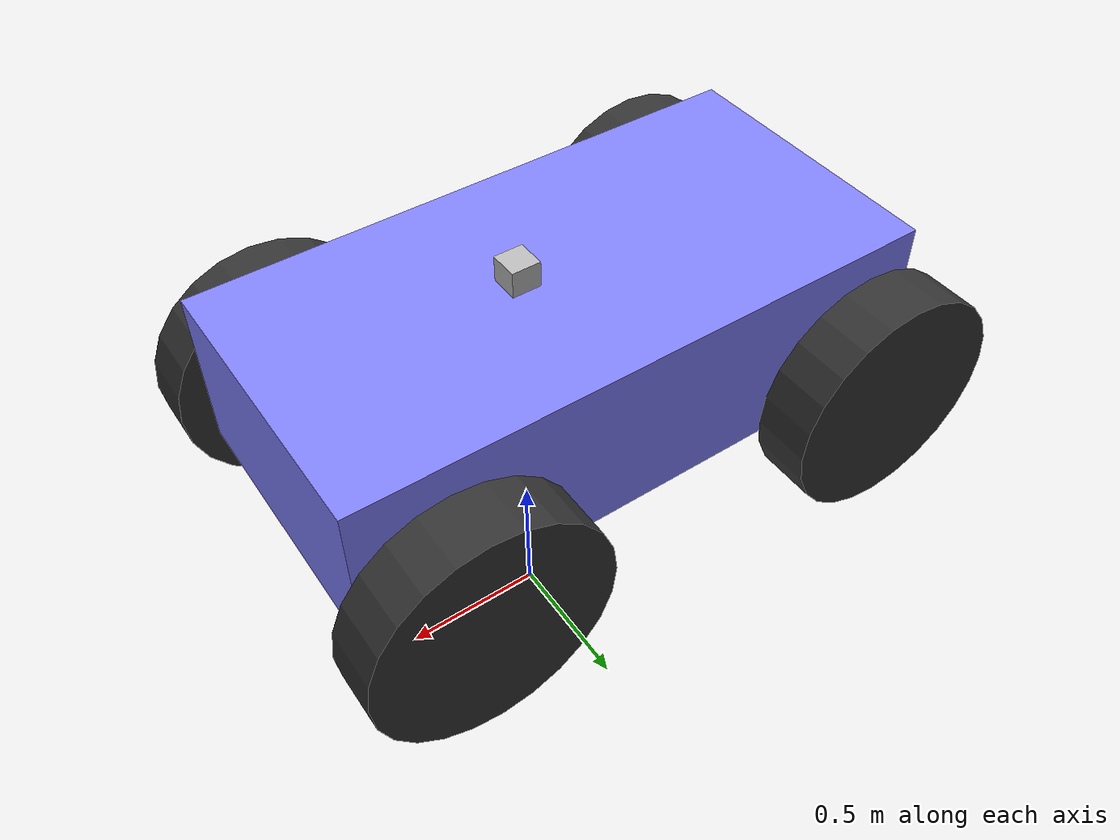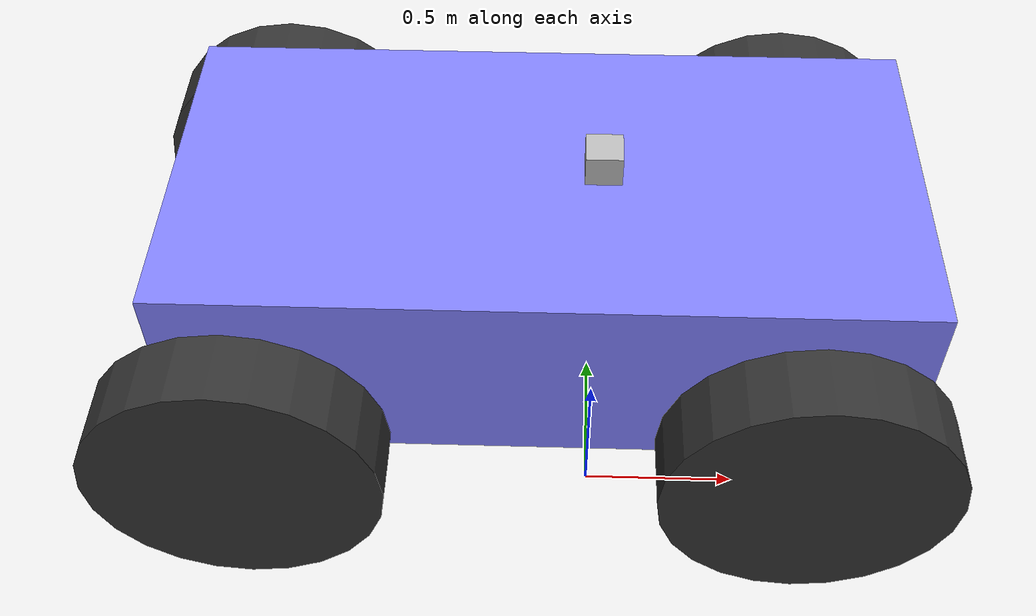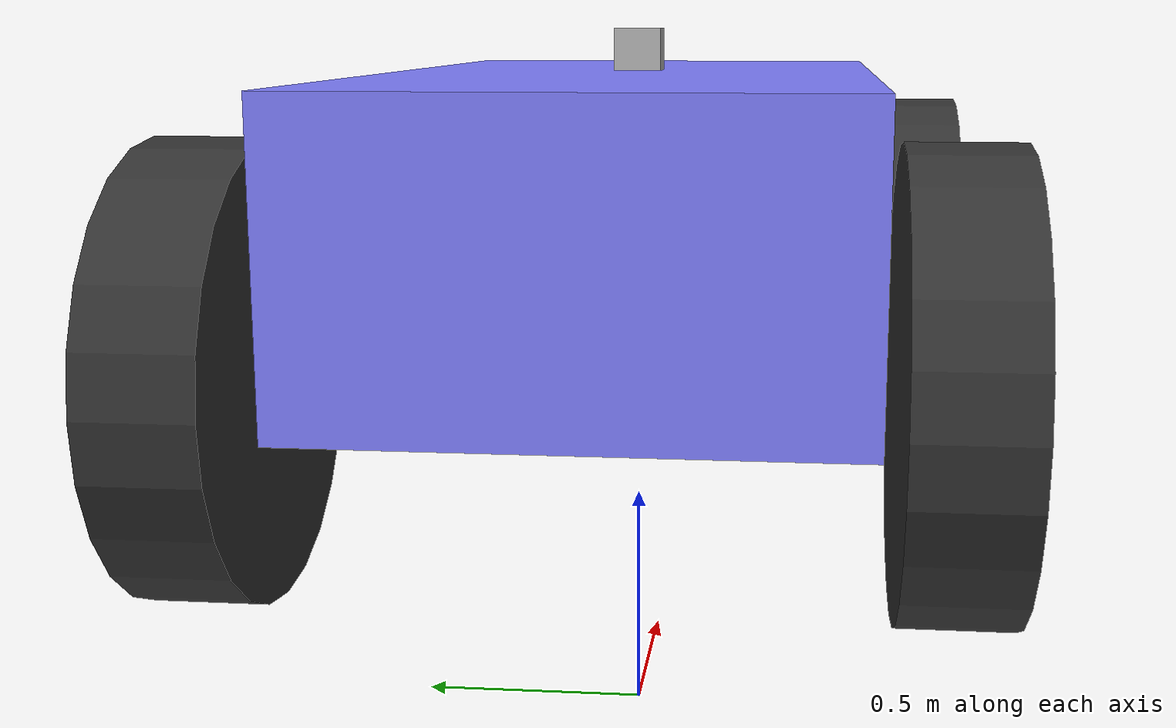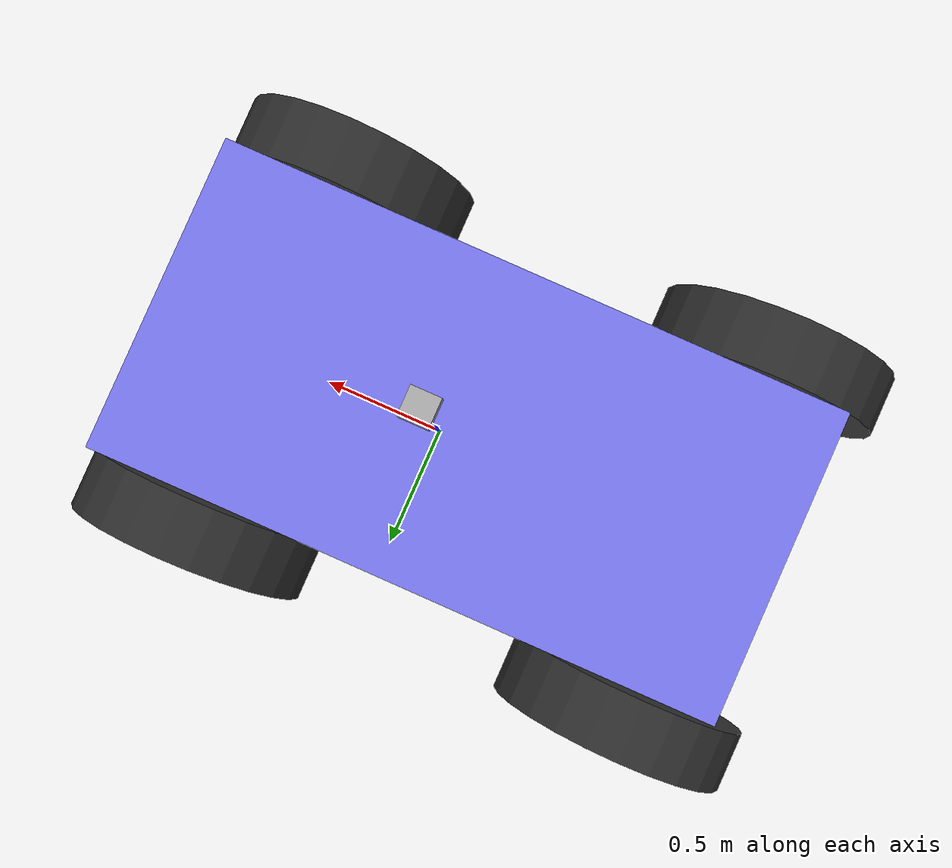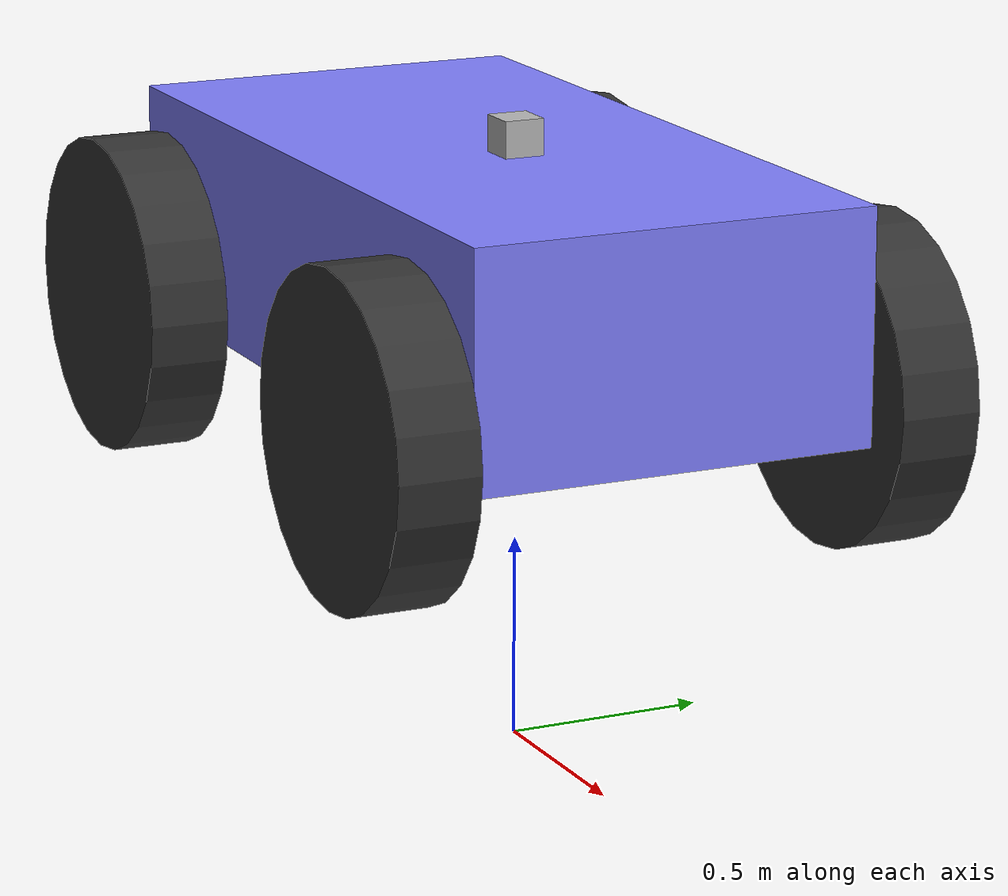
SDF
<?xml version="1.0"?>
<sdf version="1.6">

  <plugin name='gz::sim::systems::UserCommands' filename='gz-sim-user-commands-system' />
  <plugin filename="gz-sim-imu-system"
    name="gz::sim::systems::Imu">
  </plugin>
  <model name='Car' canonical_link='chassis'>
    <pose>0 0 1 0 0 0</pose>
    <link name='chassis'>
      <pose>-0.15142700000000001 0 0.17499999999999999 0 0 0</pose>
      <inertial>
        <mass>1.14395</mass>
        <inertia>
          <ixx>0.126164</ixx>
          <ixy>0</ixy>
          <ixz>0</ixz>
          <iyy>0.41651899999999997</iyy>
          <iyz>0</iyz>
          <izz>0.481014</izz>
        </inertia>
        <pose>0 0 0 0 0 0</pose>
      </inertial>
      <visual name='visual'>
        <geometry>
          <box>
            <size>2.0114200000000002 1 0.56872599999999995</size>
          </box>
        </geometry>
        <material>
          <ambient>0.5 0.5 1 1</ambient>
          <diffuse>0.5 0.5 1 1</diffuse>
          <specular>0 0 1 1</specular>
        </material>
      </visual>
      <collision name='collision'>
        <geometry>
          <box>
            <size>2.0114200000000002 1 0.56872599999999995</size>
          </box>
        </geometry>
        <surface>
          <friction>
            <ode />
          </friction>
          <bounce />
          <contact />
        </surface>
      </collision>
      <sensor name="imu_sensor" type="imu">
        <always_on>1</always_on>
        <update_rate>1</update_rate>
        <visualize>true</visualize>
        <topic>imu</topic>
      </sensor>
    </link>

    <link name="lidar_link">
      <pose>0 0 0.5 0 0 0</pose>
      <inertial>
        <mass>0.1</mass>
        <inertia>
          <ixx>0.000166667</ixx>
          <iyy>0.000166667</iyy>
          <izz>0.000166667</izz>
        </inertia>
      </inertial>
      <collision name="collision">
        <geometry>
          <box>
            <size>0.1 0.1 0.1</size>
          </box>
        </geometry>
      </collision>
      <visual name="visual">
        <geometry>
          <box>
            <size>0.1 0.1 0.1</size>
          </box>
        </geometry>
      </visual>

      <sensor name='gpu_lidar' type='gpu_lidar'>
        <pose>0 0 0.5 0 0 0</pose>
        <topic>lidar</topic>
        <update_rate>100</update_rate>
        <ray>
          <scan>
            <horizontal>
              <samples>360</samples>
              <min_angle>0</min_angle>
              <max_angle>6.14</max_angle>
            </horizontal>
          </scan>
          <range>
            <min>0.3</min>
            <max>12</max>
            <resolution>1</resolution>
          </range>
        </ray>
        <always_on>1</always_on>
        <visualize>true</visualize>
      </sensor>
    </link>

    <link name='front_left_wheel'>
      <pose>0.55428299999999997 0.62502900000000006 -0.025000000000000022 -1.5706999999999995 0 0</pose>
      <inertial>
        <mass>2</mass>
        <inertia>
          <ixx>0.14583299999999999</ixx>
          <ixy>0</ixy>
          <ixz>0</ixz>
          <iyy>0.14583299999999999</iyy>
          <iyz>0</iyz>
          <izz>0.125</izz>
        </inertia>
        <pose>0 0 0 0 0 0</pose>
      </inertial>
      <visual name='visual'>
        <geometry>
          <cylinder>
            <length>0.2</length>
            <radius>0.4</radius>
          </cylinder>
        </geometry>
        <material>
          <ambient>0.200000003 0.200000003 0.200000003 1</ambient>
          <diffuse>0.200000003 0.200000003 0.200000003 1</diffuse>
          <specular>0.200000003 0.200000003 0.200000003 1</specular>
        </material>
      </visual>
      <collision name='collision'>
        <geometry>
          <cylinder>
            <length>0.2</length>
            <radius>0.4</radius>
          </cylinder>
        </geometry>
        <surface>
          <friction>
            <ode>
              <mu>0.5</mu>
              <mu2>1</mu2>
              <fdir1>0 0 1</fdir1>
            </ode>
            <bullet>
              <friction>0.5</friction>
              <friction2>1</friction2>
              <rolling_friction>0.10000000000000001</rolling_friction>
            </bullet>
          </friction>
          <bounce />
          <contact />
        </surface>
      </collision>
      <enable_wind>false</enable_wind>
    </link>
    <link name='rear_left_wheel'>
      <pose>-0.95713800000000004 0.62502900000000006 -0.025000000000000022 -1.5706999999999995 0 0</pose>
      <inertial>
        <mass>2</mass>
        <inertia>
          <ixx>0.14583299999999999</ixx>
          <ixy>0</ixy>
          <ixz>0</ixz>
          <iyy>0.14583299999999999</iyy>
          <iyz>0</iyz>
          <izz>0.125</izz>
        </inertia>
        <pose>0 0 0 0 0 0</pose>
      </inertial>
      <visual name='visual'>
        <geometry>
          <cylinder>
            <length>0.2</length>
            <radius>0.4</radius>
          </cylinder>
        </geometry>
        <material>
          <ambient>0.200000003 0.200000003 0.200000003 1</ambient>
          <diffuse>0.200000003 0.200000003 0.200000003 1</diffuse>
          <specular>0.200000003 0.200000003 0.200000003 1</specular>
        </material>
      </visual>
      <collision name='collision'>
        <geometry>
          <cylinder>
            <length>0.2</length>
            <radius>0.4</radius>
          </cylinder>
        </geometry>
        <surface>
          <friction>
            <ode>
              <mu>0.5</mu>
              <mu2>1</mu2>
              <fdir1>0 0 1</fdir1>
            </ode>
            <bullet>
              <friction>0.5</friction>
              <friction2>1</friction2>
              <rolling_friction>0.5</rolling_friction>
            </bullet>
          </friction>
          <bounce />
          <contact />
        </surface>
      </collision>
      <enable_wind>false</enable_wind>
    </link>
    <link name='front_right_wheel'>
      <pose>0.55428200000000005 -0.62502900000000006 -0.025000000000000022 -1.5706999999999995 0 0</pose>
      <inertial>
        <mass>2</mass>
        <inertia>
          <ixx>0.14583299999999999</ixx>
          <ixy>0</ixy>
          <ixz>0</ixz>
          <iyy>0.14583299999999999</iyy>
          <iyz>0</iyz>
          <izz>0.125</izz>
        </inertia>
        <pose>0 0 0 0 0 0</pose>
      </inertial>
      <visual name='visual'>
        <geometry>
          <cylinder>
            <length>0.2</length>
            <radius>0.4</radius>
          </cylinder>
        </geometry>
        <material>
          <ambient>0.200000003 0.200000003 0.200000003 1</ambient>
          <diffuse>0.200000003 0.200000003 0.200000003 1</diffuse>
          <specular>0.200000003 0.200000003 0.200000003 1</specular>
        </material>
      </visual>
      <collision name='collision'>
        <geometry>
          <cylinder>
            <length>0.2</length>
            <radius>0.4</radius>
          </cylinder>
        </geometry>
        <surface>
          <friction>
            <ode>
              <mu>0.5</mu>
              <mu2>1</mu2>
              <fdir1>0 0 1</fdir1>
            </ode>
            <bullet>
              <friction>0.5</friction>
              <friction2>1</friction2>
              <rolling_friction>0.10000000000000001</rolling_friction>
            </bullet>
          </friction>
          <bounce />
          <contact />
        </surface>
      </collision>
      <enable_wind>false</enable_wind>
    </link>
    <link name='rear_right_wheel'>
      <pose>-0.95713800000000004 -0.62502900000000006 -0.025000000000000022 -1.5706999999999995 0 0</pose>
      <inertial>
        <mass>2</mass>
        <inertia>
          <ixx>0.14583299999999999</ixx>
          <ixy>0</ixy>
          <ixz>0</ixz>
          <iyy>0.14583299999999999</iyy>
          <iyz>0</iyz>
          <izz>0.125</izz>
        </inertia>
        <pose>0 0 0 0 0 0</pose>
      </inertial>
      <visual name='visual'>
        <geometry>
          <cylinder>
            <length>0.2</length>
            <radius>0.4</radius>
          </cylinder>
        </geometry>
        <material>
          <ambient>0.200000003 0.200000003 0.200000003 1</ambient>
          <diffuse>0.200000003 0.200000003 0.200000003 1</diffuse>
          <specular>0.200000003 0.200000003 0.200000003 1</specular>
        </material>
      </visual>
      <collision name='collision'>
        <geometry>
          <cylinder>
            <length>0.2</length>
            <radius>0.4</radius>
          </cylinder>
        </geometry>
        <surface>
          <friction>
            <ode>
              <mu>0.5</mu>
              <mu2>1</mu2>
              <fdir1>0 0 1</fdir1>
            </ode>
            <bullet>
              <friction>0.5</friction>
              <friction2>1</friction2>
              <rolling_friction>0.5</rolling_friction>
            </bullet>
          </friction>
          <bounce />
          <contact />
        </surface>
      </collision>
      <enable_wind>false</enable_wind>
    </link>
    <link name='front_left_wheel_steering_link'>
      <pose>0.55428299999999997 0.5 0.020000000000000018 0 0 0</pose>
      <inertial>
        <mass>0.5</mass>
        <inertia>
          <ixx>0.015299999999999999</ixx>
          <iyy>0.025000000000000001</iyy>
          <izz>0.015299999999999999</izz>
          <ixy>0</ixy>
          <ixz>0</ixz>
          <iyz>0</iyz>
        </inertia>
        <pose>0 0 0 0 0 0</pose>
      </inertial>
      <visual name='steering_link_visual'>
        <pose>0 0 0 0 0 0</pose>
        <geometry>
          <cylinder>
            <length>0.10000000000000001</length>
            <radius>0.029999999999999999</radius>
          </cylinder>
        </geometry>
        <material>
          <ambient>1 1 1 1</ambient>
          <diffuse>1 1 1 1</diffuse>
        </material>
      </visual>
      <enable_wind>false</enable_wind>
    </link>
    <link name='front_right_wheel_steering_link'>
      <pose>0.55428299999999997 -0.5 0.020000000000000018 0 0 0</pose>
      <inertial>
        <mass>0.5</mass>
        <inertia>
          <ixx>0.015299999999999999</ixx>
          <iyy>0.025000000000000001</iyy>
          <izz>0.015299999999999999</izz>
          <ixy>0</ixy>
          <ixz>0</ixz>
          <iyz>0</iyz>
        </inertia>
        <pose>0 0 0 0 0 0</pose>
      </inertial>
      <visual name='steering_link_visual'>
        <pose>0 0 0 0 0 0</pose>
        <geometry>
          <cylinder>
            <length>0.10000000000000001</length>
            <radius>0.029999999999999999</radius>
          </cylinder>
        </geometry>
        <material>
          <ambient>1 1 1 1</ambient>
          <diffuse>1 1 1 1</diffuse>
        </material>
      </visual>
      <enable_wind>false</enable_wind>
    </link>
    <joint name='front_left_wheel_steering_joint' type='revolute'>
      <child>front_left_wheel_steering_link</child>
      <parent>chassis</parent>
      <axis>
        <xyz>0 0 1</xyz>
        <limit>
          <lower>-0.59999999999999998</lower>
          <upper>0.59999999999999998</upper>
          <effort>25</effort>
          <velocity>1</velocity>
          <stiffness>100000000</stiffness>
          <dissipation>1</dissipation>
        </limit>
        <dynamics>
          <spring_reference>0</spring_reference>
          <spring_stiffness>0</spring_stiffness>
          <damping>0</damping>
          <friction>0</friction>
        </dynamics>
      </axis>
      <pose>0 0 0 0 0 0</pose>
    </joint>
    <joint name='front_right_wheel_steering_joint' type='revolute'>
      <parent>chassis</parent>
      <child>front_right_wheel_steering_link</child>
      <axis>
        <xyz>0 0 1</xyz>
        <limit>
          <lower>-0.59999999999999998</lower>
          <upper>0.59999999999999998</upper>
          <effort>25</effort>
          <velocity>1</velocity>
          <stiffness>100000000</stiffness>
          <dissipation>1</dissipation>
        </limit>
        <dynamics>
          <spring_reference>0</spring_reference>
          <spring_stiffness>0</spring_stiffness>
          <damping>0</damping>
          <friction>0</friction>
        </dynamics>
      </axis>
      <pose>0 0 0 0 0 0</pose>
    </joint>
    <joint name='front_left_wheel_joint' type='revolute'>
      <parent>front_left_wheel_steering_link</parent>
      <child>front_left_wheel</child>
      <axis>
        <xyz>0 1.2671444049156495e-17 1</xyz>
        <limit>
          <lower>-1.7976900000000001e+308</lower>
          <upper>1.7976900000000001e+308</upper>
          <effort>inf</effort>
          <velocity>inf</velocity>
          <stiffness>100000000</stiffness>
          <dissipation>1</dissipation>
        </limit>
        <dynamics>
          <spring_reference>0</spring_reference>
          <spring_stiffness>0</spring_stiffness>
          <damping>0</damping>
          <friction>0</friction>
        </dynamics>
      </axis>
      <pose>0 2.0816681711721685e-17 0 -1.2671444049156495e-17 0 0</pose>
    </joint>
    <joint name='front_right_wheel_joint' type='revolute'>
      <parent>front_right_wheel_steering_link</parent>
      <child>front_right_wheel</child>
      <axis>
        <xyz>0 1.2671444049156495e-17 1</xyz>
        <limit>
          <lower>-1.7976900000000001e+308</lower>
          <upper>1.7976900000000001e+308</upper>
          <effort>inf</effort>
          <velocity>inf</velocity>
          <stiffness>100000000</stiffness>
          <dissipation>1</dissipation>
        </limit>
        <dynamics>
          <spring_reference>0</spring_reference>
          <spring_stiffness>0</spring_stiffness>
          <damping>0</damping>
          <friction>0</friction>
        </dynamics>
      </axis>
      <pose>0 6.9388939039072284e-18 0 -1.2671444049156495e-17 0 0</pose>
    </joint>

    <joint name='rear_left_wheel_joint' type='revolute'>
      <parent>chassis</parent>
      <child>rear_left_wheel</child>
      <axis>
        <xyz>0 1.2671444049156495e-17 1</xyz>
        <limit>
          <lower>-1.7976900000000001e+308</lower>
          <upper>1.7976900000000001e+308</upper>
          <effort>inf</effort>
          <velocity>inf</velocity>
          <stiffness>100000000</stiffness>
          <dissipation>1</dissipation>
        </limit>
        <dynamics>
          <spring_reference>0</spring_reference>
          <spring_stiffness>0</spring_stiffness>
          <damping>0</damping>
          <friction>0</friction>
        </dynamics>
      </axis>
      <pose>0 2.0816681711721685e-17 0 -1.2671444049156495e-17 0 0</pose>
    </joint>
    <joint name='rear_right_wheel_joint' type='revolute'>
      <parent>chassis</parent>
      <child>rear_right_wheel</child>
      <axis>
        <xyz>0 1.2671444049156495e-17 1</xyz>
        <limit>
          <lower>-1.7976900000000001e+308</lower>
          <upper>1.7976900000000001e+308</upper>
          <effort>inf</effort>
          <velocity>inf</velocity>
          <stiffness>100000000</stiffness>
          <dissipation>1</dissipation>
        </limit>
        <dynamics>
          <spring_reference>0</spring_reference>
          <spring_stiffness>0</spring_stiffness>
          <damping>0</damping>
          <friction>0</friction>
        </dynamics>
      </axis>
      <pose>0 6.9388939039072284e-18 0 -1.2671444049156495e-17 0 0</pose>
    </joint>

    <joint name='lidar_sensor_joint' type='fixed'>
      <parent>chassis</parent>
      <child>lidar_link</child>
    </joint>

    <!-- Plugins for the model ie cmd velocity -->
    <plugin filename='gz-sim-ackermann-steering-system' name='gz::sim::systems::AckermannSteering' >
      <left_joint>front_left_wheel_joint</left_joint>
      <left_joint>rear_left_wheel_joint</left_joint>
      <right_joint>front_right_wheel_joint</right_joint>
      <right_joint>rear_right_wheel_joint</right_joint>
      <left_steering_joint>front_left_wheel_steering_joint</left_steering_joint>
      <right_steering_joint>front_right_wheel_steering_joint</right_steering_joint>
      <kingpin_width>1.0</kingpin_width>
      <steering_limit>1</steering_limit>
      <wheel_base>1.0</wheel_base>
      <wheel_separation>1.25</wheel_separation>
      <wheel_radius>0.3</wheel_radius>
      <min_velocity>-5</min_velocity>
      <max_velocity>5</max_velocity>
      <min_acceleration>-3</min_acceleration>
      <max_acceleration>3</max_acceleration>
      <topic>cmd_vel</topic>
    </plugin>
    <static>false</static>
    <self_collide>false</self_collide>

    <plugin filename="gz-sim-imu-system"
      name="gz::sim::systems::Imu">
    </plugin>

    <plugin
      filename="gz-sim-sensors-system"
      name="gz::sim::systems::Sensors">
      <render_engine>ogre2</render_engine>
    </plugin>

  </model>

</sdf>
